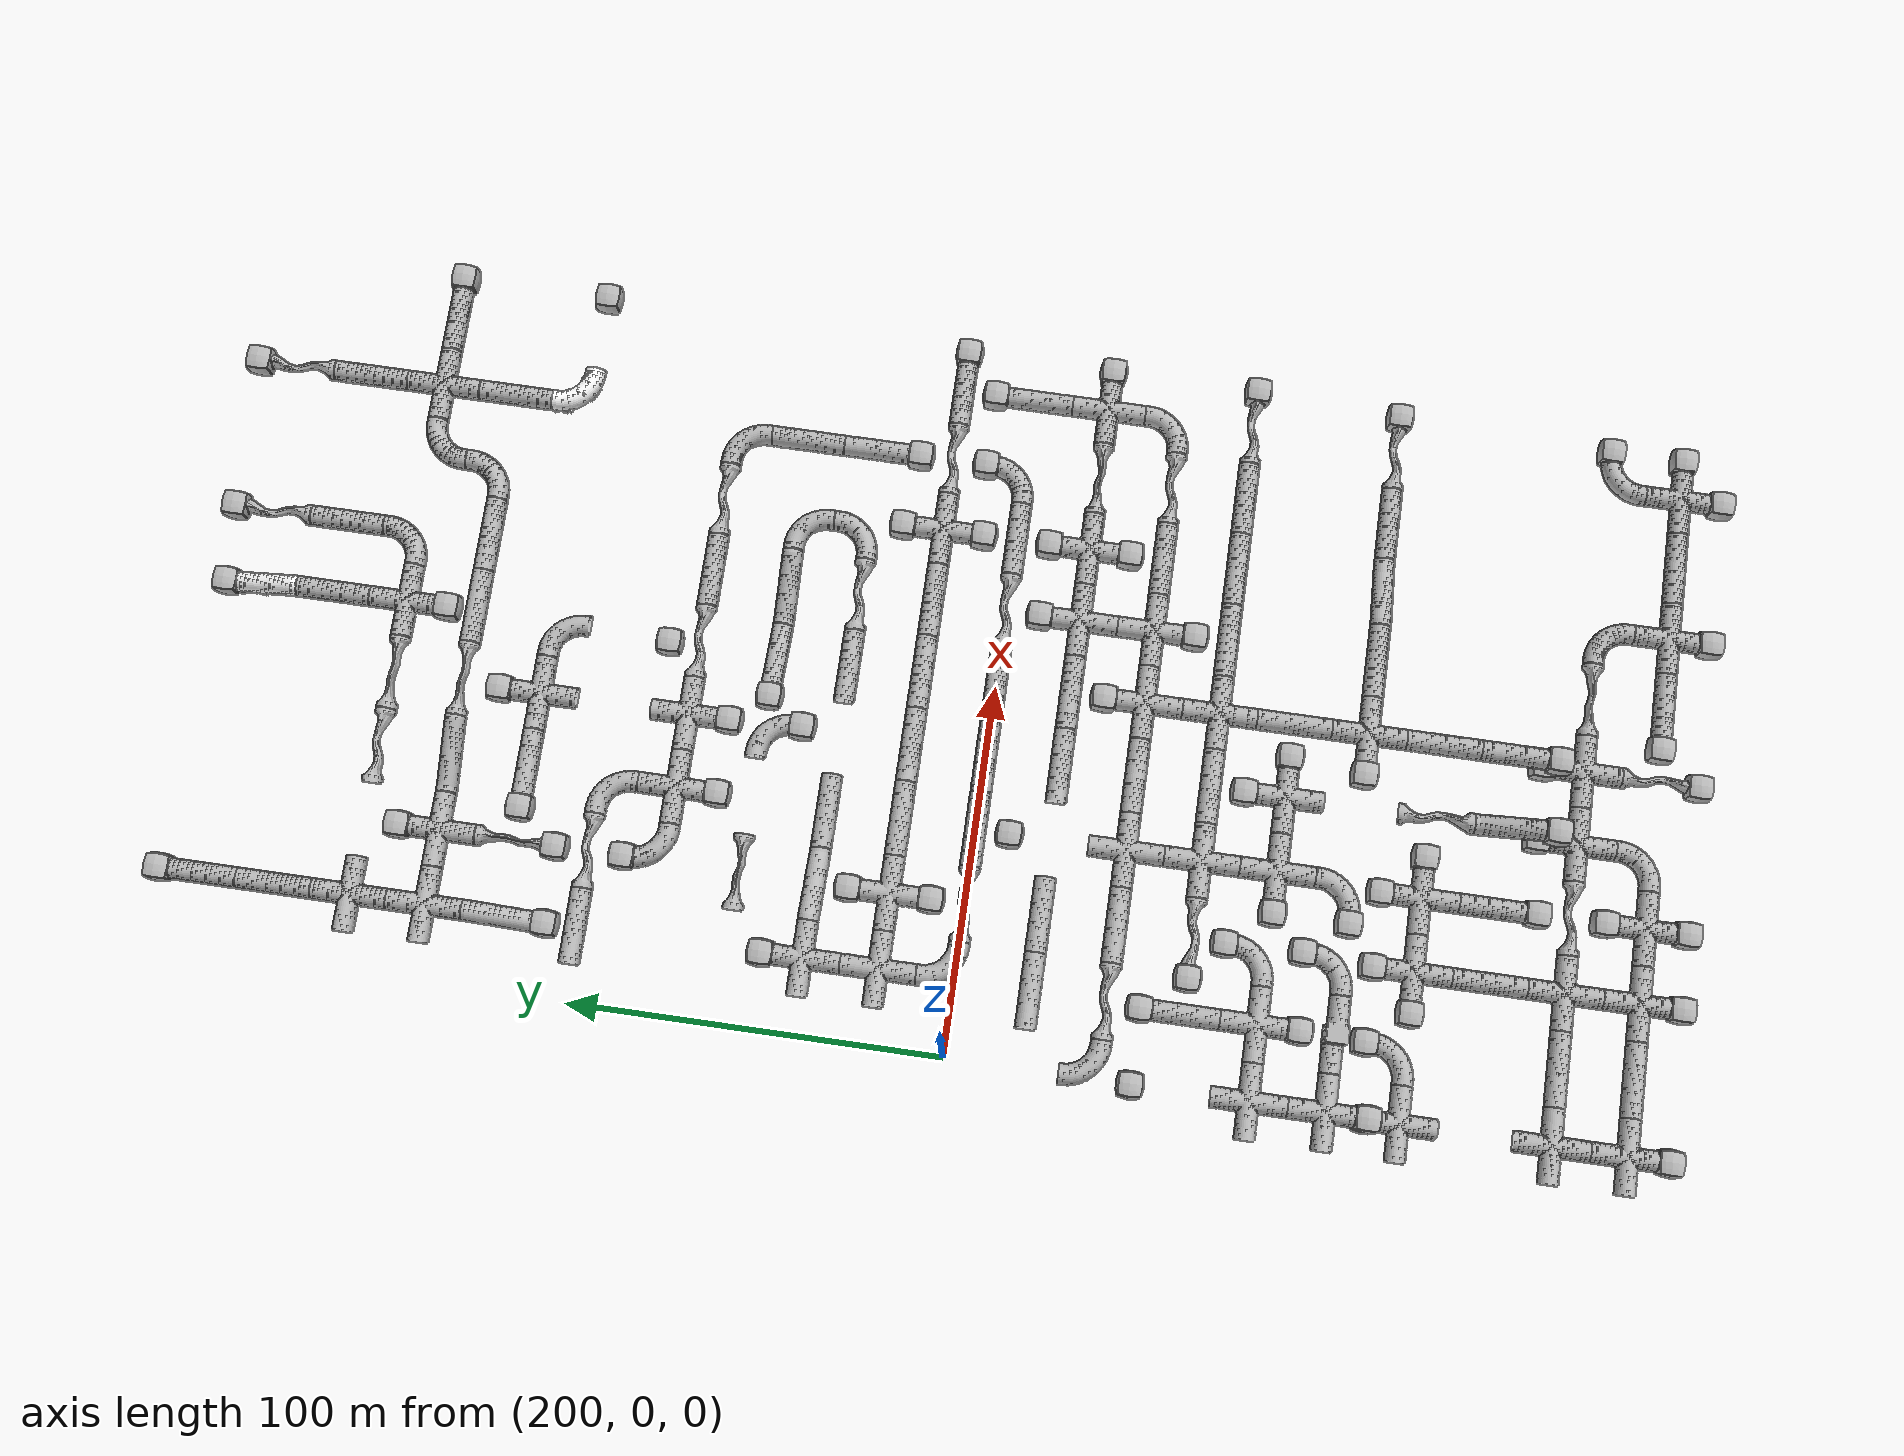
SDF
<sdf version="1.6">
 <world name="tunnel_circuit_01">
  <include>
   <name>tile_14</name>
   <uri>model://tunnel_tile_5</uri>
   <pose>220.000000 200.000000 5.000000 0 0 3.141593</pose>
  </include>
  <include>
   <name>tile_15</name>
   <uri>model://tunnel_tile_blocker</uri>
   <pose>220.000000 211.000000 5.000000 0 0 0.000000</pose>
  </include>
  <include>
   <name>tile_16</name>
   <uri>model://Rough Tunnel Tile Ramp</uri>
   <pose>300.000000 200.000000 0.000000 0 0 3.141593</pose>
  </include>
  <include>
   <name>tile_17</name>
   <uri>model://tunnel_tile_blocker</uri>
   <pose>300.000000 211.000000 0.000000 0 0 0.000000</pose>
  </include>
  <include>
   <name>tile_18</name>
   <uri>model://constrained_tunnel_tile_short</uri>
   <pose>320.000000 200.000000 5.000000 0 0 3.141593</pose>
  </include>
  <include>
   <name>tile_19</name>
   <uri>model://tunnel_tile_blocker</uri>
   <pose>320.000000 211.000000 5.000000 0 0 0.000000</pose>
  </include>
  <include>
   <name>tile_20</name>
   <uri>model://constrained_tunnel_tile_short</uri>
   <pose>360.000000 200.000000 10.000000 0 0 3.141593</pose>
  </include>
  <include>
   <name>tile_21</name>
   <uri>model://tunnel_tile_blocker</uri>
   <pose>360.000000 211.000000 10.000000 0 0 0.000000</pose>
  </include>
  <include>
   <name>tile_36</name>
   <uri>model://tunnel_tile_5</uri>
   <pose>220.000000 180.000000 5.000000 0 0 3.141593</pose>
  </include>
  <include>
   <name>tile_37</name>
   <uri>model://tunnel_tile_5</uri>
   <pose>300.000000 180.000000 5.000000 0 0 3.141593</pose>
  </include>
  <include>
   <name>backpack_2</name>
   <uri>model://Backpack</uri>
   <pose>300.000000 180.000000 5.000000 0 0 0.000000</pose>
  </include>
  <include>
   <name>tile_38</name>
   <uri>model://tunnel_tile_5</uri>
   <pose>320.000000 180.000000 5.000000 0 0 3.141593</pose>
  </include>
  <include>
   <name>tile_39</name>
   <uri>model://tunnel_tile_5</uri>
   <pose>360.000000 180.000000 10.000000 0 0 3.141593</pose>
  </include>
  <include>
   <name>tile_56</name>
   <uri>model://tunnel_tile_1</uri>
   <pose>220.000000 160.000000 5.000000 0 0 0.000000</pose>
  </include>
  <include>
   <name>tile_58</name>
   <uri>model://constrained_tunnel_tile_short</uri>
   <pose>260.000000 160.000000 5.000000 0 0 1.570796</pose>
  </include>
  <include>
   <name>tile_59</name>
   <uri>model://constrained_tunnel_tile_tall</uri>
   <pose>280.000000 160.000000 5.000000 0 0 1.570796</pose>
  </include>
  <include>
   <name>tile_60</name>
   <uri>model://tunnel_tile_1</uri>
   <pose>300.000000 160.000000 5.000000 0 0 0.000000</pose>
  </include>
  <include>
   <name>tile_61</name>
   <uri>model://tunnel_tile_blocker</uri>
   <pose>300.000000 149.000000 5.000000 0 0 0.000000</pose>
  </include>
  <include>
   <name>tile_62</name>
   <uri>model://tunnel_tile_2</uri>
   <pose>320.000000 160.000000 5.000000 0 0 3.141593</pose>
  </include>
  <include>
   <name>tile_63</name>
   <uri>model://tunnel_tile_2</uri>
   <pose>340.000000 160.000000 10.000000 0 0 0.000000</pose>
  </include>
  <include>
   <name>tile_64</name>
   <uri>model://tunnel_tile_1</uri>
   <pose>360.000000 160.000000 10.000000 0 0 0.000000</pose>
  </include>
  <include>
   <name>tile_65</name>
   <uri>model://tunnel_tile_5</uri>
   <pose>380.000000 160.000000 10.000000 0 0 1.570796</pose>
  </include>
  <include>
   <name>tile_66</name>
   <uri>model://tunnel_tile_blocker</uri>
   <pose>391.000000 160.000000 10.000000 0 0 0.000000</pose>
  </include>
  <include>
   <name>tile_81</name>
   <uri>model://tunnel_tile_1</uri>
   <pose>220.000000 140.000000 5.000000 0 0 0.000000</pose>
  </include>
  <include>
   <name>tile_82</name>
   <uri>model://tunnel_tile_1</uri>
   <pose>240.000000 140.000000 5.000000 0 0 0.000000</pose>
  </include>
  <include>
   <name>tile_83</name>
   <uri>model://tunnel_tile_blocker</uri>
   <pose>240.000000 151.000000 5.000000 0 0 0.000000</pose>
  </include>
  <include>
   <name>tile_84</name>
   <uri>model://tunnel_tile_6</uri>
   <pose>260.000000 140.000000 5.000000 0 0 4.712389</pose>
  </include>
  <include>
   <name>tile_85</name>
   <uri>model://constrained_tunnel_tile_tall</uri>
   <pose>280.000000 140.000000 10.000000 0 0 1.570796</pose>
  </include>
  <include>
   <name>tile_86</name>
   <uri>model://tunnel_tile_5</uri>
   <pose>300.000000 140.000000 10.000000 0 0 1.570796</pose>
  </include>
  <include>
   <name>tile_87</name>
   <uri>model://tunnel_tile_5</uri>
   <pose>320.000000 140.000000 10.000000 0 0 1.570796</pose>
  </include>
  <include>
   <name>tile_88</name>
   <uri>model://tunnel_tile_2</uri>
   <pose>340.000000 140.000000 10.000000 0 0 3.141593</pose>
  </include>
  <include>
   <name>tile_89</name>
   <uri>model://tunnel_tile_5</uri>
   <pose>360.000000 140.000000 10.000000 0 0 0.000000</pose>
  </include>
  <include>
   <name>tile_102</name>
   <uri>model://tunnel_tile_6</uri>
   <pose>220.000000 120.000000 0.000000 0 0 0.000000</pose>
  </include>
  <include>
   <name>tile_103</name>
   <uri>model://tunnel_tile_blocker</uri>
   <pose>220.000000 109.000000 0.000000 0 0 0.000000</pose>
  </include>
  <include>
   <name>tile_104</name>
   <uri>model://constrained_tunnel_tile_tall</uri>
   <pose>240.000000 120.000000 5.000000 0 0 0.000000</pose>
  </include>
  <include>
   <name>tile_105</name>
   <uri>model://tunnel_tile_blocker</uri>
   <pose>240.000000 109.000000 5.000000 0 0 0.000000</pose>
  </include>
  <include>
   <name>tile_106</name>
   <uri>model://tunnel_tile_5</uri>
   <pose>260.000000 120.000000 5.000000 0 0 4.712389</pose>
  </include>
  <include>
   <name>tile_107</name>
   <uri>model://tunnel_tile_blocker</uri>
   <pose>249.000000 120.000000 5.000000 0 0 0.000000</pose>
  </include>
  <include>
   <name>tile_108</name>
   <uri>model://tunnel_tile_1</uri>
   <pose>280.000000 120.000000 5.000000 0 0 0.000000</pose>
  </include>
  <include>
   <name>tile_109</name>
   <uri>model://tunnel_tile_blocker</uri>
   <pose>280.000000 131.000000 5.000000 0 0 0.000000</pose>
  </include>
  <include>
   <name>tile_110</name>
   <uri>model://tunnel_tile_2</uri>
   <pose>300.000000 120.000000 5.000000 0 0 4.712389</pose>
  </include>
  <include>
   <name>tile_111</name>
   <uri>model://Rough Tunnel Tile 90-degree Turn</uri>
   <pose>360.000000 120.000000 10.000000 0 0 1.570796</pose>
  </include>
  <include>
   <name>tile_113</name>
   <uri>model://tunnel_tile_blocker</uri>
   <pose>391.000000 120.000000 10.000000 0 0 0.000000</pose>
  </include>
  <include>
   <name>tile_126</name>
   <uri>model://tunnel_tile_5</uri>
   <pose>220.000000 100.000000 5.000000 0 0 1.570796</pose>
  </include>
  <include>
   <name>tile_127</name>
   <uri>model://constrained_tunnel_tile_short</uri>
   <pose>240.000000 100.000000 5.000000 0 0 1.570796</pose>
  </include>
  <include>
   <name>tile_128</name>
   <uri>model://tunnel_tile_2</uri>
   <pose>260.000000 100.000000 5.000000 0 0 4.712389</pose>
  </include>
  <include>
   <name>tile_131</name>
   <uri>model://tunnel_tile_blocker</uri>
   <pose>300.000000 89.000000 0.000000 0 0 0.000000</pose>
  </include>
  <include>
   <name>tile_145</name>
   <uri>model://tunnel_tile_2</uri>
   <pose>240.000000 80.000000 5.000000 0 0 1.570796</pose>
  </include>
  <include>
   <name>tile_146</name>
   <uri>model://tunnel_tile_blocker</uri>
   <pose>240.000000 91.000000 5.000000 0 0 0.000000</pose>
  </include>
  <include>
   <name>tile_147</name>
   <uri>model://tunnel_tile_1</uri>
   <pose>260.000000 80.000000 5.000000 0 0 0.000000</pose>
  </include>
  <include>
   <name>tile_148</name>
   <uri>model://tunnel_tile_blocker</uri>
   <pose>260.000000 69.000000 5.000000 0 0 0.000000</pose>
  </include>
  <include>
   <name>tile_149</name>
   <uri>model://tunnel_tile_1</uri>
   <pose>280.000000 80.000000 5.000000 0 0 0.000000</pose>
  </include>
  <include>
   <name>tile_150</name>
   <uri>model://tunnel_tile_blocker</uri>
   <pose>280.000000 69.000000 5.000000 0 0 0.000000</pose>
  </include>
  <include>
   <name>tile_151</name>
   <uri>model://constrained_tunnel_tile_short</uri>
   <pose>300.000000 80.000000 5.000000 0 0 1.570796</pose>
  </include>
  <include>
   <name>tile_152</name>
   <uri>model://tunnel_tile_5</uri>
   <pose>320.000000 80.000000 5.000000 0 0 1.570796</pose>
  </include>
  <include>
   <name>tile_153</name>
   <uri>model://constrained_tunnel_tile_short</uri>
   <pose>340.000000 80.000000 5.000000 0 0 1.570796</pose>
  </include>
  <include>
   <name>tile_154</name>
   <uri>model://tunnel_tile_2</uri>
   <pose>360.000000 80.000000 5.000000 0 0 4.712389</pose>
  </include>
  <include>
   <name>tile_173</name>
   <uri>model://constrained_tunnel_tile_tall</uri>
   <pose>240.000000 60.000000 5.000000 0 0 1.570796</pose>
  </include>
  <include>
   <name>tile_175</name>
   <uri>model://tunnel_tile_2</uri>
   <pose>280.000000 60.000000 10.000000 0 0 4.712389</pose>
  </include>
  <include>
   <name>tile_176</name>
   <uri>model://tunnel_tile_blocker</uri>
   <pose>280.000000 49.000000 10.000000 0 0 0.000000</pose>
  </include>
  <include>
   <name>phone_1</name>
   <uri>model://Phone</uri>
   <pose>279.200000 58.400000 10.004000 -1.570796 0 0.000000</pose>
  </include>
  <include>
   <name>tile_177</name>
   <uri>model://tunnel_tile_6</uri>
   <pose>300.000000 60.000000 -5.000000 0 0 1.570796</pose>
  </include>
  <include>
   <name>tile_178</name>
   <uri>model://tunnel_tile_blocker</uri>
   <pose>289.000000 60.000000 0.000000 0 0 0.000000</pose>
  </include>
  <include>
   <name>tile_179</name>
   <uri>model://tunnel_tile_6</uri>
   <pose>320.000000 60.000000 -5.000000 0 0 4.712389</pose>
  </include>
  <include>
   <name>tile_180</name>
   <uri>model://tunnel_tile_2</uri>
   <pose>340.000000 60.000000 0.000000 0 0 4.712389</pose>
  </include>
  <include>
   <name>tile_181</name>
   <uri>model://tunnel_tile_5</uri>
   <pose>360.000000 60.000000 5.000000 0 0 0.000000</pose>
  </include>
  <include>
   <name>tile_195</name>
   <uri>model://tunnel_tile_1</uri>
   <pose>220.000000 40.000000 5.000000 0 0 0.000000</pose>
  </include>
  <include>
   <name>tile_196</name>
   <uri>model://tunnel_tile_blocker</uri>
   <pose>220.000000 51.000000 5.000000 0 0 0.000000</pose>
  </include>
  <include>
   <name>tile_197</name>
   <uri>model://tunnel_tile_6</uri>
   <pose>240.000000 40.000000 0.000000 0 0 1.570796</pose>
  </include>
  <include>
   <name>tile_198</name>
   <uri>model://tunnel_tile_5</uri>
   <pose>260.000000 40.000000 0.000000 0 0 1.570796</pose>
  </include>
  <include>
   <name>extinguisher_3</name>
   <uri>model://Extinguisher</uri>
   <pose>264.000000 38.500000 0.000000 0 0 0.000000</pose>
  </include>
  <include>
   <name>tile_200</name>
   <uri>model://tunnel_tile_5</uri>
   <pose>300.000000 40.000000 0.000000 0 0 1.570796</pose>
  </include>
  <include>
   <name>tile_201</name>
   <uri>model://constrained_tunnel_tile_short</uri>
   <pose>320.000000 40.000000 0.000000 0 0 1.570796</pose>
  </include>
  <include>
   <name>tile_202</name>
   <uri>model://tunnel_tile_2</uri>
   <pose>340.000000 40.000000 0.000000 0 0 3.141593</pose>
  </include>
  <include>
   <name>tile_203</name>
   <uri>model://tunnel_tile_5</uri>
   <pose>360.000000 40.000000 5.000000 0 0 0.000000</pose>
  </include>
  <include>
   <name>tile_204</name>
   <uri>model://tunnel_tile_blocker</uri>
   <pose>360.000000 29.000000 5.000000 0 0 0.000000</pose>
  </include>
  <include>
   <name>tile_215</name>
   <uri>model://tunnel_tile_1</uri>
   <pose>220.000000 20.000000 5.000000 0 0 0.000000</pose>
  </include>
  <include>
   <name>tile_216</name>
   <uri>model://tunnel_tile_1</uri>
   <pose>240.000000 20.000000 5.000000 0 0 0.000000</pose>
  </include>
  <include>
   <name>tile_217</name>
   <uri>model://tunnel_tile_blocker</uri>
   <pose>240.000000 31.000000 5.000000 0 0 0.000000</pose>
  </include>
  <include>
   <name>tile_218</name>
   <uri>model://tunnel_tile_blocker</uri>
   <pose>240.000000 9.000000 5.000000 0 0 0.000000</pose>
  </include>
  <include>
   <name>tile_219</name>
   <uri>model://tunnel_tile_5</uri>
   <pose>260.000000 20.000000 5.000000 0 0 1.570796</pose>
  </include>
  <include>
   <name>tile_220</name>
   <uri>model://tunnel_tile_5</uri>
   <pose>280.000000 20.000000 5.000000 0 0 1.570796</pose>
  </include>
  <include>
   <name>tile_221</name>
   <uri>model://tunnel_tile_5</uri>
   <pose>300.000000 20.000000 5.000000 0 0 1.570796</pose>
  </include>
  <include>
   <name>tile_222</name>
   <uri>model://tunnel_tile_5</uri>
   <pose>320.000000 20.000000 5.000000 0 0 1.570796</pose>
  </include>
  <include>
   <name>tile_223</name>
   <uri>model://tunnel_tile_1</uri>
   <pose>340.000000 20.000000 5.000000 0 0 0.000000</pose>
  </include>
  <include>
   <name>tile_224</name>
   <uri>model://tunnel_tile_blocker</uri>
   <pose>340.000000 31.000000 5.000000 0 0 0.000000</pose>
  </include>
  <include>
   <name>tile_225</name>
   <uri>model://tunnel_tile_blocker</uri>
   <pose>340.000000 9.000000 5.000000 0 0 0.000000</pose>
  </include>
  <include>
   <name>tile_226</name>
   <uri>model://constrained_tunnel_tile_short</uri>
   <pose>360.000000 20.000000 5.000000 0 0 1.570796</pose>
  </include>
  <include>
   <name>tile_227</name>
   <uri>model://tunnel_tile_5</uri>
   <pose>380.000000 20.000000 5.000000 0 0 1.570796</pose>
  </include>
  <include>
   <name>tile_228</name>
   <uri>model://tunnel_tile_blocker</uri>
   <pose>391.000000 20.000000 5.000000 0 0 0.000000</pose>
  </include>
  <include>
   <name>backpack_4</name>
   <uri>model://Backpack</uri>
   <pose>380.000000 20.000000 5.000000 0 0 0.000000</pose>
  </include>
  <include>
   <name>tile_245</name>
   <uri>model://tunnel_tile_2</uri>
   <pose>220.000000 0.000000 5.000000 0 0 1.570796</pose>
  </include>
  <include>
   <name>tile_246</name>
   <uri>model://constrained_tunnel_tile_short</uri>
   <pose>240.000000 0.000000 5.000000 0 0 1.570796</pose>
  </include>
  <include>
   <name>tile_247</name>
   <uri>model://tunnel_tile_5</uri>
   <pose>260.000000 0.000000 5.000000 0 0 1.570796</pose>
  </include>
  <include>
   <name>tile_248</name>
   <uri>model://tunnel_tile_5</uri>
   <pose>280.000000 0.000000 5.000000 0 0 1.570796</pose>
  </include>
  <include>
   <name>tile_249</name>
   <uri>model://tunnel_tile_5</uri>
   <pose>300.000000 0.000000 5.000000 0 0 1.570796</pose>
  </include>
  <include>
   <name>tile_250</name>
   <uri>model://constrained_tunnel_tile_short</uri>
   <pose>320.000000 0.000000 5.000000 0 0 1.570796</pose>
  </include>
  <include>
   <name>tile_251</name>
   <uri>model://tunnel_tile_5</uri>
   <pose>340.000000 0.000000 5.000000 0 0 1.570796</pose>
  </include>
  <include>
   <name>tile_252</name>
   <uri>model://tunnel_tile_2</uri>
   <pose>360.000000 0.000000 5.000000 0 0 3.141593</pose>
  </include>
  <include>
   <name>tile_253</name>
   <uri>model://tunnel_tile_blocker</uri>
   <pose>360.000000 11.000000 5.000000 0 0 0.000000</pose>
  </include>
  <include>
   <name>tile_254</name>
   <uri>model://tunnel_tile_5</uri>
   <pose>380.000000 0.000000 5.000000 0 0 3.141593</pose>
  </include>
  <include>
   <name>tile_255</name>
   <uri>model://tunnel_tile_blocker</uri>
   <pose>380.000000 11.000000 5.000000 0 0 0.000000</pose>
  </include>
  <include>
   <name>tile_265</name>
   <uri>model://tunnel_tile_5</uri>
   <pose>220.000000 -20.000000 5.000000 0 0 1.570796</pose>
  </include>
  <include>
   <name>tile_266</name>
   <uri>model://tunnel_tile_5</uri>
   <pose>240.000000 -20.000000 5.000000 0 0 1.570796</pose>
  </include>
  <include>
   <name>tile_268</name>
   <uri>model://tunnel_tile_blocker</uri>
   <pose>260.000000 -9.000000 5.000000 0 0 0.000000</pose>
  </include>
  <include>
   <name>extinguisher_4</name>
   <uri>model://Extinguisher</uri>
   <pose>260.000000 -20.000000 5.000000 0 0 0.000000</pose>
  </include>
  <include>
   <name>tile_269</name>
   <uri>model://tunnel_tile_5</uri>
   <pose>280.000000 -20.000000 5.000000 0 0 1.570796</pose>
  </include>
  <include>
   <name>tile_270</name>
   <uri>model://tunnel_tile_5</uri>
   <pose>300.000000 -20.000000 5.000000 0 0 1.570796</pose>
  </include>
  <include>
   <name>tile_271</name>
   <uri>model://tunnel_tile_1</uri>
   <pose>320.000000 -20.000000 5.000000 0 0 0.000000</pose>
  </include>
  <include>
   <name>tile_272</name>
   <uri>model://tunnel_tile_blocker</uri>
   <pose>320.000000 -9.000000 5.000000 0 0 0.000000</pose>
  </include>
  <include>
   <name>tile_273</name>
   <uri>model://tunnel_tile_1</uri>
   <pose>340.000000 -20.000000 5.000000 0 0 0.000000</pose>
  </include>
  <include>
   <name>tile_274</name>
   <uri>model://tunnel_tile_blocker</uri>
   <pose>340.000000 -9.000000 5.000000 0 0 0.000000</pose>
  </include>
  <include>
   <name>tile_275</name>
   <uri>model://tunnel_tile_blocker</uri>
   <pose>340.000000 -31.000000 5.000000 0 0 0.000000</pose>
  </include>
  <include>
   <name>tile_276</name>
   <uri>model://constrained_tunnel_tile_tall</uri>
   <pose>360.000000 -20.000000 5.000000 0 0 1.570796</pose>
  </include>
  <include>
   <name>tile_277</name>
   <uri>model://tunnel_tile_1</uri>
   <pose>380.000000 -20.000000 5.000000 0 0 0.000000</pose>
  </include>
  <include>
   <name>tile_278</name>
   <uri>model://tunnel_tile_blocker</uri>
   <pose>391.000000 -20.000000 5.000000 0 0 0.000000</pose>
  </include>
  <include>
   <name>tile_287</name>
   <uri>model://tunnel_tile_2</uri>
   <pose>200.000000 -40.000000 5.000000 0 0 1.570796</pose>
  </include>
  <include>
   <name>tile_288</name>
   <uri>model://constrained_tunnel_tile_short</uri>
   <pose>220.000000 -40.000000 5.000000 0 0 1.570796</pose>
  </include>
  <include>
   <name>tile_289</name>
   <uri>model://tunnel_tile_5</uri>
   <pose>240.000000 -40.000000 5.000000 0 0 1.570796</pose>
  </include>
  <include>
   <name>tile_290</name>
   <uri>model://tunnel_tile_1</uri>
   <pose>260.000000 -40.000000 5.000000 0 0 0.000000</pose>
  </include>
  <include>
   <name>tile_291</name>
   <uri>model://tunnel_tile_5</uri>
   <pose>280.000000 -40.000000 5.000000 0 0 1.570796</pose>
  </include>
  <include>
   <name>tile_292</name>
   <uri>model://tunnel_tile_1</uri>
   <pose>300.000000 -40.000000 5.000000 0 0 0.000000</pose>
  </include>
  <include>
   <name>tile_293</name>
   <uri>model://tunnel_tile_blocker</uri>
   <pose>300.000000 -29.000000 5.000000 0 0 0.000000</pose>
  </include>
  <include>
   <name>tile_294</name>
   <uri>model://tunnel_tile_1</uri>
   <pose>320.000000 -40.000000 5.000000 0 0 0.000000</pose>
  </include>
  <include>
   <name>tile_295</name>
   <uri>model://tunnel_tile_blocker</uri>
   <pose>320.000000 -51.000000 5.000000 0 0 0.000000</pose>
  </include>
  <include>
   <name>tile_296</name>
   <uri>model://tunnel_tile_5</uri>
   <pose>340.000000 -40.000000 5.000000 0 0 1.570796</pose>
  </include>
  <include>
   <name>tile_297</name>
   <uri>model://constrained_tunnel_tile_short</uri>
   <pose>360.000000 -40.000000 5.000000 0 0 1.570796</pose>
  </include>
  <include>
   <name>tile_298</name>
   <uri>model://tunnel_tile_2</uri>
   <pose>380.000000 -40.000000 5.000000 0 0 3.141593</pose>
  </include>
  <include>
   <name>phone_3</name>
   <uri>model://Phone</uri>
   <pose>380.000000 -35.000000 5.004000 -1.570796 0 0.000000</pose>
  </include>
  <include>
   <name>tile_305</name>
   <uri>model://tunnel_tile_blocker</uri>
   <pose>200.000000 -49.000000 0.000000 0 0 0.000000</pose>
  </include>
  <include>
   <name>tile_306</name>
   <uri>model://tunnel_tile_5</uri>
   <pose>220.000000 -60.000000 0.000000 0 0 3.141593</pose>
  </include>
  <include>
   <name>tile_307</name>
   <uri>model://tunnel_tile_blocker</uri>
   <pose>220.000000 -49.000000 0.000000 0 0 0.000000</pose>
  </include>
  <include>
   <name>tile_308</name>
   <uri>model://constrained_tunnel_tile_short</uri>
   <pose>240.000000 -60.000000 5.000000 0 0 4.712389</pose>
  </include>
  <include>
   <name>tile_309</name>
   <uri>model://tunnel_tile_blocker</uri>
   <pose>229.000000 -60.000000 5.000000 0 0 0.000000</pose>
  </include>
  <include>
   <name>tile_310</name>
   <uri>model://tunnel_tile_1</uri>
   <pose>260.000000 -60.000000 5.000000 0 0 0.000000</pose>
  </include>
  <include>
   <name>tile_311</name>
   <uri>model://tunnel_tile_5</uri>
   <pose>280.000000 -60.000000 5.000000 0 0 1.570796</pose>
  </include>
  <include>
   <name>tile_312</name>
   <uri>model://tunnel_tile_1</uri>
   <pose>300.000000 -60.000000 5.000000 0 0 0.000000</pose>
  </include>
  <include>
   <name>tile_313</name>
   <uri>model://tunnel_tile_5</uri>
   <pose>320.000000 -60.000000 5.000000 0 0 1.570796</pose>
  </include>
  <include>
   <name>tile_314</name>
   <uri>model://tunnel_tile_5</uri>
   <pose>340.000000 -60.000000 5.000000 0 0 1.570796</pose>
  </include>
  <include>
   <name>tile_315</name>
   <uri>model://tunnel_tile_5</uri>
   <pose>360.000000 -60.000000 5.000000 0 0 1.570796</pose>
  </include>
  <include>
   <name>tile_316</name>
   <uri>model://constrained_tunnel_tile_short</uri>
   <pose>380.000000 -60.000000 5.000000 0 0 1.570796</pose>
  </include>
  <include>
   <name>tile_317</name>
   <uri>model://tunnel_tile_blocker</uri>
   <pose>391.000000 -60.000000 5.000000 0 0 0.000000</pose>
  </include>
  <include>
   <name>tile_327</name>
   <uri>model://tunnel_tile_1</uri>
   <pose>200.000000 -80.000000 0.000000 0 0 0.000000</pose>
  </include>
  <include>
   <name>tile_328</name>
   <uri>model://tunnel_tile_1</uri>
   <pose>220.000000 -80.000000 0.000000 0 0 0.000000</pose>
  </include>
  <include>
   <name>tile_329</name>
   <uri>model://tunnel_tile_blocker</uri>
   <pose>220.000000 -91.000000 0.000000 0 0 0.000000</pose>
  </include>
  <include>
   <name>tile_330</name>
   <uri>model://tunnel_tile_2</uri>
   <pose>240.000000 -80.000000 0.000000 0 0 3.141593</pose>
  </include>
  <include>
   <name>tile_331</name>
   <uri>model://tunnel_tile_blocker</uri>
   <pose>240.000000 -69.000000 0.000000 0 0 0.000000</pose>
  </include>
  <include>
   <name>tile_332</name>
   <uri>model://tunnel_tile_1</uri>
   <pose>260.000000 -80.000000 5.000000 0 0 0.000000</pose>
  </include>
  <include>
   <name>tile_333</name>
   <uri>model://tunnel_tile_blocker</uri>
   <pose>249.000000 -80.000000 5.000000 0 0 0.000000</pose>
  </include>
  <include>
   <name>tile_334</name>
   <uri>model://tunnel_tile_1</uri>
   <pose>280.000000 -80.000000 5.000000 0 0 0.000000</pose>
  </include>
  <include>
   <name>tile_335</name>
   <uri>model://tunnel_tile_blocker</uri>
   <pose>280.000000 -69.000000 5.000000 0 0 0.000000</pose>
  </include>
  <include>
   <name>tile_336</name>
   <uri>model://tunnel_tile_blocker</uri>
   <pose>291.000000 -80.000000 5.000000 0 0 0.000000</pose>
  </include>
  <include>
   <name>tile_337</name>
   <uri>model://tunnel_tile_5</uri>
   <pose>300.000000 -80.000000 5.000000 0 0 0.000000</pose>
  </include>
  <include>
   <name>tile_347</name>
   <uri>model://tunnel_tile_1</uri>
   <pose>200.000000 -100.000000 0.000000 0 0 0.000000</pose>
  </include>
  <include>
   <name>tile_348</name>
   <uri>model://tunnel_tile_blocker</uri>
   <pose>200.000000 -111.000000 0.000000 0 0 0.000000</pose>
  </include>
  <include>
   <name>tile_349</name>
   <uri>model://tunnel_tile_7</uri>
   <pose>220.000000 -100.000000 0.000000 0 0 4.712389</pose>
  </include>
  <include>
   <name>tile_350</name>
   <uri>model://tunnel_tile_2</uri>
   <pose>240.000000 -100.000000 5.000000 0 0 3.141593</pose>
  </include>
  <include>
   <name>tile_351</name>
   <uri>model://tunnel_tile_blocker</uri>
   <pose>240.000000 -89.000000 5.000000 0 0 0.000000</pose>
  </include>
  <include>
   <name>tile_352</name>
   <uri>model://tunnel_tile_2</uri>
   <pose>260.000000 -100.000000 5.000000 0 0 3.141593</pose>
  </include>
  <include>
   <name>tile_353</name>
   <uri>model://tunnel_tile_blocker</uri>
   <pose>249.000000 -100.000000 5.000000 0 0 0.000000</pose>
  </include>
  <include>
   <name>tile_355</name>
   <uri>model://tunnel_tile_1</uri>
   <pose>300.000000 -100.000000 5.000000 0 0 0.000000</pose>
  </include>
  <include>
   <name>tile_356</name>
   <uri>model://tunnel_tile_blocker</uri>
   <pose>289.000000 -100.000000 5.000000 0 0 0.000000</pose>
  </include>
  <include>
   <name>tile_357</name>
   <uri>model://tunnel_tile_5</uri>
   <pose>320.000000 -100.000000 5.000000 0 0 1.570796</pose>
  </include>
  <include>
   <name>tile_358</name>
   <uri>model://tunnel_tile_6</uri>
   <pose>340.000000 -100.000000 0.000000 0 0 1.570796</pose>
  </include>
  <include>
   <name>tile_359</name>
   <uri>model://tunnel_tile_5</uri>
   <pose>360.000000 -100.000000 0.000000 0 0 1.570796</pose>
  </include>
  <include>
   <name>tile_360</name>
   <uri>model://constrained_tunnel_tile_short</uri>
   <pose>380.000000 -100.000000 0.000000 0 0 1.570796</pose>
  </include>
  <include>
   <name>tile_361</name>
   <uri>model://tunnel_tile_blocker</uri>
   <pose>391.000000 -100.000000 0.000000 0 0 0.000000</pose>
  </include>
  <include>
   <name>tile_370</name>
   <uri>model://tunnel_tile_1</uri>
   <pose>200.000000 -120.000000 -5.000000 0 0 0.000000</pose>
  </include>
  <include>
   <name>tile_371</name>
   <uri>model://tunnel_tile_blocker</uri>
   <pose>200.000000 -111.000000 -5.000000 0 0 0.000000</pose>
  </include>
  <include>
   <name>tile_372</name>
   <uri>model://tunnel_tile_2</uri>
   <pose>220.000000 -120.000000 -5.000000 0 0 3.141593</pose>
  </include>
  <include>
   <name>tile_373</name>
   <uri>model://tunnel_tile_blocker</uri>
   <pose>220.000000 -109.000000 -5.000000 0 0 0.000000</pose>
  </include>
  <include>
   <name>tile_374</name>
   <uri>model://tunnel_tile_1</uri>
   <pose>240.000000 -120.000000 -5.000000 0 0 0.000000</pose>
  </include>
  <include>
   <name>tile_375</name>
   <uri>model://tunnel_tile_blocker</uri>
   <pose>229.000000 -120.000000 -5.000000 0 0 0.000000</pose>
  </include>
  <include>
   <name>tile_376</name>
   <uri>model://tunnel_tile_blocker</uri>
   <pose>240.000000 -109.000000 -5.000000 0 0 0.000000</pose>
  </include>
  <include>
   <name>tile_377</name>
   <uri>model://tunnel_tile_1</uri>
   <pose>260.000000 -120.000000 -5.000000 0 0 0.000000</pose>
  </include>
  <include>
   <name>tile_378</name>
   <uri>model://tunnel_tile_blocker</uri>
   <pose>260.000000 -109.000000 -5.000000 0 0 0.000000</pose>
  </include>
  <include>
   <name>tile_379</name>
   <uri>model://tunnel_tile_blocker</uri>
   <pose>271.000000 -120.000000 -5.000000 0 0 0.000000</pose>
  </include>
  <include>
   <name>tile_380</name>
   <uri>model://constrained_tunnel_tile_short</uri>
   <pose>280.000000 -120.000000 5.000000 0 0 0.000000</pose>
  </include>
  <include>
   <name>tile_381</name>
   <uri>model://tunnel_tile_5</uri>
   <pose>300.000000 -120.000000 5.000000 0 0 0.000000</pose>
  </include>
  <include>
   <name>tile_388</name>
   <uri>model://tunnel_tile_5</uri>
   <pose>240.000000 -140.000000 -5.000000 0 0 3.141593</pose>
  </include>
  <include>
   <name>tile_389</name>
   <uri>model://tunnel_tile_5</uri>
   <pose>260.000000 -140.000000 -5.000000 0 0 0.000000</pose>
  </include>
  <include>
   <name>tile_390</name>
   <uri>model://tunnel_tile_blocker</uri>
   <pose>260.000000 -151.000000 -5.000000 0 0 0.000000</pose>
  </include>
  <include>
   <name>tile_391</name>
   <uri>model://tunnel_tile_6</uri>
   <pose>280.000000 -140.000000 5.000000 0 0 3.141593</pose>
  </include>
  <include>
   <name>tile_392</name>
   <uri>model://tunnel_tile_blocker</uri>
   <pose>280.000000 -151.000000 10.000000 0 0 0.000000</pose>
  </include>
  <include>
   <name>tile_393</name>
   <uri>model://tunnel_tile_5</uri>
   <pose>300.000000 -140.000000 5.000000 0 0 0.000000</pose>
  </include>
  <include>
   <name>tile_394</name>
   <uri>model://tunnel_tile_blocker</uri>
   <pose>300.000000 -151.000000 5.000000 0 0 0.000000</pose>
  </include>
  <include>
   <name>tile_400</name>
   <uri>model://tunnel_tile_1</uri>
   <pose>200.000000 -160.000000 -5.000000 0 0 0.000000</pose>
  </include>
  <include>
   <name>tile_401</name>
   <uri>model://tunnel_tile_5</uri>
   <pose>220.000000 -160.000000 -5.000000 0 0 1.570796</pose>
  </include>
  <include>
   <name>tile_402</name>
   <uri>model://tunnel_tile_1</uri>
   <pose>240.000000 -160.000000 -5.000000 0 0 0.000000</pose>
  </include>
  <include>
   <name>tile_403</name>
   <uri>model://constrained_tunnel_tile_short</uri>
   <pose>260.000000 -160.000000 -5.000000 0 0 1.570796</pose>
  </include>
  <include>
   <name>tile_404</name>
   <uri>model://tunnel_tile_1</uri>
   <pose>280.000000 -160.000000 -5.000000 0 0 0.000000</pose>
  </include>
  <include>
   <name>tile_405</name>
   <uri>model://tunnel_tile_blocker</uri>
   <pose>280.000000 -149.000000 -5.000000 0 0 0.000000</pose>
  </include>
  <include>
   <name>tile_406</name>
   <uri>model://tunnel_tile_1</uri>
   <pose>300.000000 -160.000000 -5.000000 0 0 0.000000</pose>
  </include>
  <include>
   <name>tile_407</name>
   <uri>model://tunnel_tile_blocker</uri>
   <pose>300.000000 -149.000000 -5.000000 0 0 0.000000</pose>
  </include>
  <include>
   <name>tile_408</name>
   <uri>model://constrained_tunnel_tile_tall</uri>
   <pose>320.000000 -160.000000 -5.000000 0 0 1.570796</pose>
  </include>
  <include>
   <name>tile_409</name>
   <uri>model://tunnel_tile_2</uri>
   <pose>340.000000 -160.000000 -5.000000 0 0 4.712389</pose>
  </include>
  <include>
   <name>tile_410</name>
   <uri>model://tunnel_tile_2</uri>
   <pose>380.000000 -160.000000 -5.000000 0 0 0.000000</pose>
  </include>
  <include>
   <name>tile_411</name>
   <uri>model://tunnel_tile_blocker</uri>
   <pose>391.000000 -160.000000 -5.000000 0 0 0.000000</pose>
  </include>
  <include>
   <name>tile_430</name>
   <uri>model://tunnel_tile_1</uri>
   <pose>200.000000 -180.000000 -5.000000 0 0 0.000000</pose>
  </include>
  <include>
   <name>tile_431</name>
   <uri>model://tunnel_tile_blocker</uri>
   <pose>200.000000 -191.000000 -5.000000 0 0 0.000000</pose>
  </include>
  <include>
   <name>tile_432</name>
   <uri>model://tunnel_tile_5</uri>
   <pose>220.000000 -180.000000 -5.000000 0 0 1.570796</pose>
  </include>
  <include>
   <name>tile_433</name>
   <uri>model://tunnel_tile_1</uri>
   <pose>240.000000 -180.000000 -5.000000 0 0 0.000000</pose>
  </include>
  <include>
   <name>tile_434</name>
   <uri>model://tunnel_tile_blocker</uri>
   <pose>240.000000 -191.000000 -5.000000 0 0 0.000000</pose>
  </include>
  <include>
   <name>tile_435</name>
   <uri>model://tunnel_tile_1</uri>
   <pose>260.000000 -180.000000 -5.000000 0 0 0.000000</pose>
  </include>
  <include>
   <name>tile_436</name>
   <uri>model://tunnel_tile_blocker</uri>
   <pose>260.000000 -169.000000 -5.000000 0 0 0.000000</pose>
  </include>
  <include>
   <name>tile_437</name>
   <uri>model://tunnel_tile_blocker</uri>
   <pose>260.000000 -191.000000 -5.000000 0 0 0.000000</pose>
  </include>
  <include>
   <name>tile_438</name>
   <uri>model://tunnel_tile_2</uri>
   <pose>280.000000 -180.000000 -5.000000 0 0 3.141593</pose>
  </include>
  <include>
   <name>tile_439</name>
   <uri>model://constrained_tunnel_tile_short</uri>
   <pose>300.000000 -180.000000 -5.000000 0 0 0.000000</pose>
  </include>
  <include>
   <name>tile_440</name>
   <uri>model://tunnel_tile_blocker</uri>
   <pose>300.000000 -191.000000 -5.000000 0 0 0.000000</pose>
  </include>
  <include>
   <name>tile_441</name>
   <uri>model://tunnel_tile_5</uri>
   <pose>320.000000 -180.000000 -5.000000 0 0 4.712389</pose>
  </include>
  <include>
   <name>tile_442</name>
   <uri>model://tunnel_tile_blocker</uri>
   <pose>309.000000 -180.000000 -5.000000 0 0 0.000000</pose>
  </include>
  <include>
   <name>tile_443</name>
   <uri>model://tunnel_tile_1</uri>
   <pose>340.000000 -180.000000 -5.000000 0 0 0.000000</pose>
  </include>
  <include>
   <name>tile_444</name>
   <uri>model://tunnel_tile_blocker</uri>
   <pose>340.000000 -191.000000 -5.000000 0 0 0.000000</pose>
  </include>
  <include>
   <name>tile_445</name>
   <uri>model://tunnel_tile_5</uri>
   <pose>360.000000 -180.000000 -5.000000 0 0 1.570796</pose>
  </include>
  <include>
   <name>tile_446</name>
   <uri>model://tunnel_tile_1</uri>
   <pose>380.000000 -180.000000 -5.000000 0 0 0.000000</pose>
  </include>
  <include>
   <name>tile_447</name>
   <uri>model://tunnel_tile_blocker</uri>
   <pose>380.000000 -191.000000 -5.000000 0 0 0.000000</pose>
  </include>
  <include>
   <name>tile_448</name>
   <uri>model://tunnel_tile_blocker</uri>
   <pose>391.000000 -180.000000 -5.000000 0 0 0.000000</pose>
  </include>
 </world>
</sdf>
